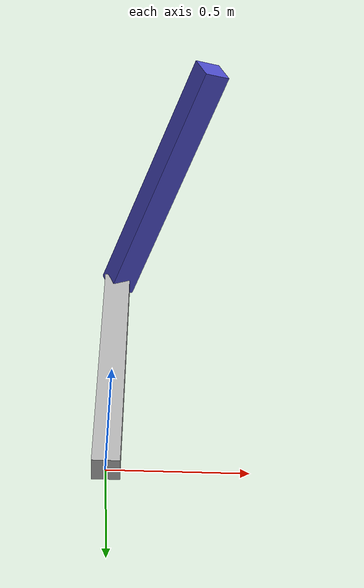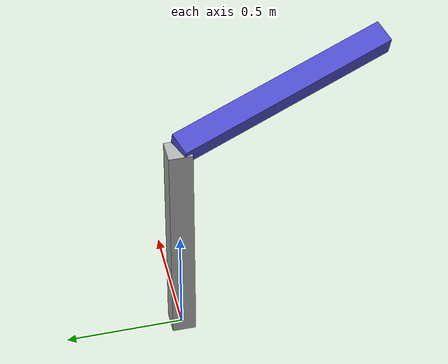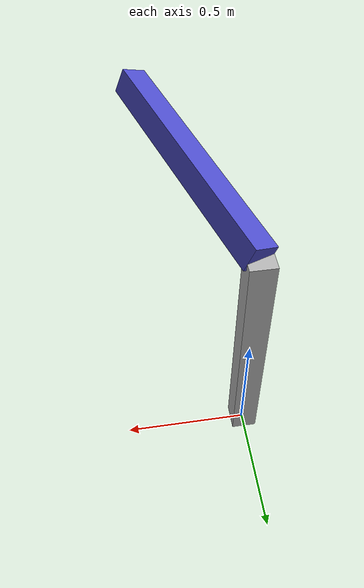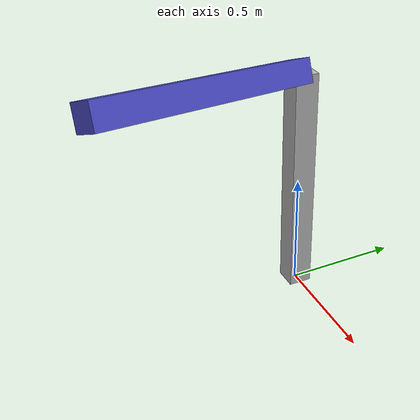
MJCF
<mujoco model="two_dof_robot">
  <compiler angle="radian"/>
  <option timestep="0.002" integrator="RK4"/>

  <worldbody>
    <body name="link1">
      <inertial pos="0 0 0.5" mass="1" diaginertia="0.01 0.01 0.001"/>
      <joint name="joint1" pos="0 0 0" axis="0 0 1" range="-314159 314159" actuatorfrcrange="-1000 1000"/>
      <geom size="0.05 0.05 0.5" pos="0 0 0.5" type="box" rgba="0.7 0.7 0.7 1"/>
      <body name="link2" pos="0 0 1" quat="0.681179 0.46602 0.46602 -0.318821">
        <inertial pos="0 0 0.5" mass="1" diaginertia="0.01 0.01 0.001"/>
        <joint name="joint2" pos="0 0 0" axis="0 0 1" range="-314159 314159" actuatorfrcrange="-1000 1000"/>
        <geom size="0.05 0.05 0.5" pos="0 0 0.5" type="box" rgba="0.3 0.3 0.8 1"/>
      </body>
    </body>
  </worldbody>
</mujoco>
